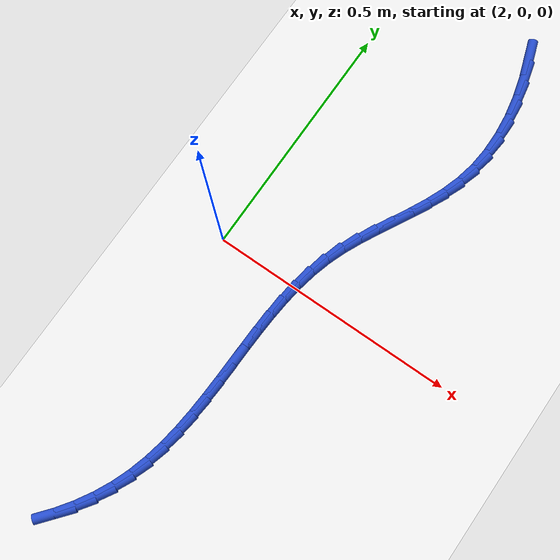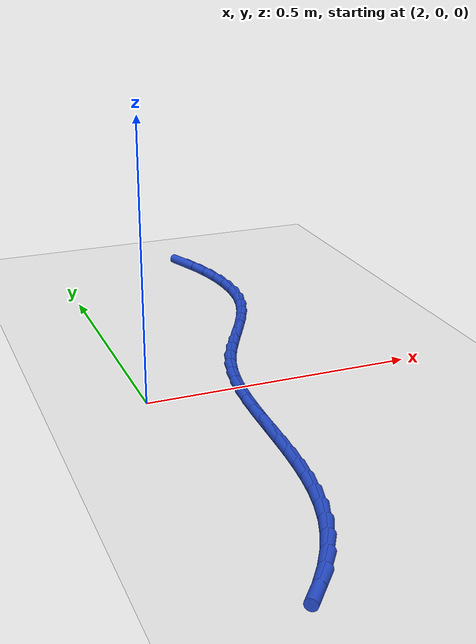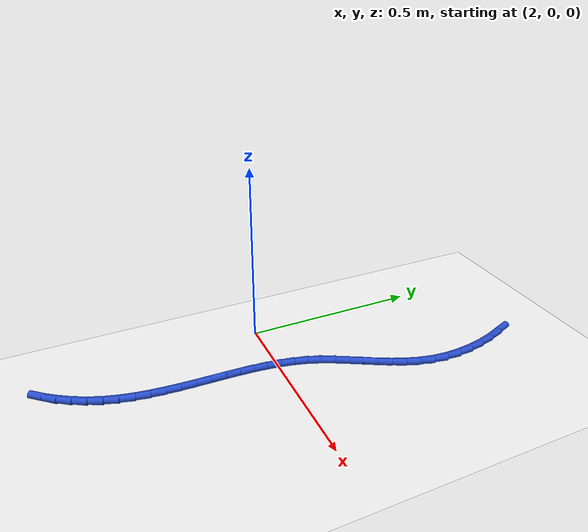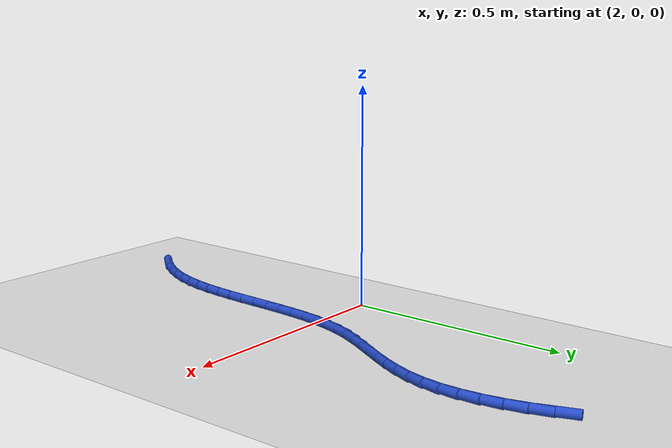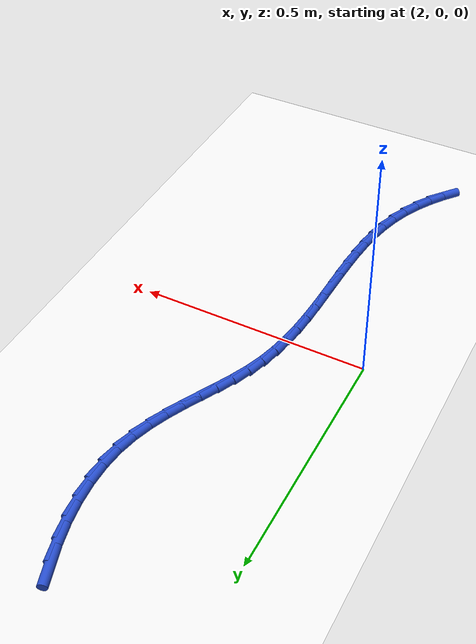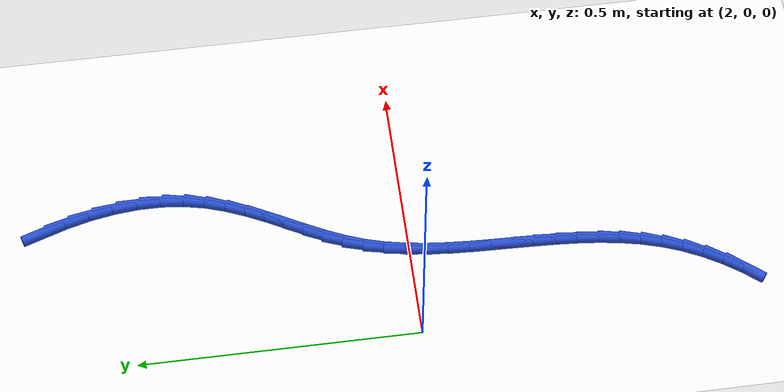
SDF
<sdf version="1.6">
 <world name="default">
  <model name="ground_plane">
   <static>1</static>
   <link name="link">
    <collision name="collision">
     <geometry><plane><normal>0 0 1</normal><size>100 100</size></plane></geometry>
     <surface><friction><ode><mu>100</mu><mu2>50</mu2></ode></friction></surface>
    </collision>
    <visual name="visual">
     <cast_shadows>0</cast_shadows>
     <geometry><plane><normal>0 0 1</normal><size>100 100</size></plane></geometry>
     <material>
      <script><uri>file://media/materials/scripts/gazebo.material</uri><name>Gazebo/WhiteGlow</name></script>
     </material>
    </visual>
   </link>
  </model>
  <model name="line">
   <link name="link_82">
    <pose>2.2860168000016787 0.6507621283373749 0.01 0 1.57 -1.235044058060258</pose>
    <collision name="collision">
     <geometry><cylinder><radius>0.01</radius><length>0.08</length></cylinder></geometry>
    </collision>
    <visual name="visual">
     <material>
      <script><name>Gazebo/Blue</name><uri>file://media/materials/scripts/gazebo.material</uri></script>
     </material>
     <geometry><cylinder><radius>0.01</radius><length>0.08</length></cylinder></geometry>
    </visual>
   </link>
   <link name="link_83">
    <pose>2.3009451116291357 0.6079832782249263 0.01 0 1.57 -1.3111368681482674</pose>
    <collision name="collision">
     <geometry><cylinder><radius>0.01</radius><length>0.08</length></cylinder></geometry>
    </collision>
    <visual name="visual">
     <material>
      <script><name>Gazebo/Blue</name><uri>file://media/materials/scripts/gazebo.material</uri></script>
     </material>
     <geometry><cylinder><radius>0.01</radius><length>0.08</length></cylinder></geometry>
    </visual>
   </link>
   <link name="link_84">
    <pose>2.312500368493042 0.5644863640517082 0.01 0 1.57 -1.390374351791379</pose>
    <collision name="collision">
     <geometry><cylinder><radius>0.01</radius><length>0.08</length></cylinder></geometry>
    </collision>
    <visual name="visual">
     <material>
      <script><name>Gazebo/Blue</name><uri>file://media/materials/scripts/gazebo.material</uri></script>
     </material>
     <geometry><cylinder><radius>0.01</radius><length>0.08</length></cylinder></geometry>
    </visual>
   </link>
   <link name="link_85">
    <pose>2.3204632308899393 0.5208316390334412 0.01 0 1.57 -1.4751146104142436</pose>
    <collision name="collision">
     <geometry><cylinder><radius>0.01</radius><length>0.08</length></cylinder></geometry>
    </collision>
    <visual name="visual">
     <material>
      <script><name>Gazebo/Blue</name><uri>file://media/materials/scripts/gazebo.material</uri></script>
     </material>
     <geometry><cylinder><radius>0.01</radius><length>0.08</length></cylinder></geometry>
    </visual>
   </link>
   <link name="link_86">
    <pose>2.3246143591163673 0.47757935638584725 0.01 0 1.57 -1.5679574712199298</pose>
    <collision name="collision">
     <geometry><cylinder><radius>0.01</radius><length>0.08</length></cylinder></geometry>
    </collision>
    <visual name="visual">
     <material>
      <script><name>Gazebo/Blue</name><uri>file://media/materials/scripts/gazebo.material</uri></script>
     </material>
     <geometry><cylinder><radius>0.01</radius><length>0.08</length></cylinder></geometry>
    </visual>
   </link>
   <link name="link_87">
    <pose>2.324734413468869 0.43528976932464813 0.01 0 1.57 1.469823745372509</pose>
    <collision name="collision">
     <geometry><cylinder><radius>0.01</radius><length>0.08</length></cylinder></geometry>
    </collision>
    <visual name="visual">
     <material>
      <script><name>Gazebo/Blue</name><uri>file://media/materials/scripts/gazebo.material</uri></script>
     </material>
     <geometry><cylinder><radius>0.01</radius><length>0.08</length></cylinder></geometry>
    </visual>
   </link>
   <link name="link_88">
    <pose>2.3206040542439856 0.3945231310655655 0.01 0 1.57 1.3558272055465153</pose>
    <collision name="collision">
     <geometry><cylinder><radius>0.01</radius><length>0.08</length></cylinder></geometry>
    </collision>
    <visual name="visual">
     <material>
      <script><name>Gazebo/Blue</name><uri>file://media/materials/scripts/gazebo.material</uri></script>
     </material>
     <geometry><cylinder><radius>0.01</radius><length>0.08</length></cylinder></geometry>
    </visual>
   </link>
   <link name="link_89">
    <pose>2.312133942376604 0.3557304185958448 0.01 0 1.57 1.2528487495024205</pose>
    <collision name="collision">
     <geometry><cylinder><radius>0.01</radius><length>0.08</length></cylinder></geometry>
    </collision>
    <visual name="visual">
     <material>
      <script><name>Gazebo/Blue</name><uri>file://media/materials/scripts/gazebo.material</uri></script>
     </material>
     <geometry><cylinder><radius>0.01</radius><length>0.08</length></cylinder></geometry>
    </visual>
   </link>
   <link name="link_90">
    <pose>2.2999632722567904 0.3187502166151791 0.01 0 1.57 1.1719579171795653</pose>
    <collision name="collision">
     <geometry><cylinder><radius>0.01</radius><length>0.08</length></cylinder></geometry>
    </collision>
    <visual name="visual">
     <material>
      <script><name>Gazebo/Blue</name><uri>file://media/materials/scripts/gazebo.material</uri></script>
     </material>
     <geometry><cylinder><radius>0.01</radius><length>0.08</length></cylinder></geometry>
    </visual>
   </link>
   <link name="link_91">
    <pose>2.2849848688027485 0.28320791250443395 0.01 0 1.57 1.1152220985894568</pose>
    <collision name="collision">
     <geometry><cylinder><radius>0.01</radius><length>0.08</length></cylinder></geometry>
    </collision>
    <visual name="visual">
     <material>
      <script><name>Gazebo/Blue</name><uri>file://media/materials/scripts/gazebo.material</uri></script>
     </material>
     <geometry><cylinder><radius>0.01</radius><length>0.08</length></cylinder></geometry>
    </visual>
   </link>
   <link name="link_92">
    <pose>2.2680918146240834 0.24872867703365872 0.01 0 1.57 1.0833131247067735</pose>
    <collision name="collision">
     <geometry><cylinder><radius>0.01</radius><length>0.08</length></cylinder></geometry>
    </collision>
    <visual name="visual">
     <material>
      <script><name>Gazebo/Blue</name><uri>file://media/materials/scripts/gazebo.material</uri></script>
     </material>
     <geometry><cylinder><radius>0.01</radius><length>0.08</length></cylinder></geometry>
    </visual>
   </link>
   <link name="link_93">
    <pose>2.2501771923303995 0.21493768097290272 0.01 0 1.57 1.0764679655349856</pose>
    <collision name="collision">
     <geometry><cylinder><radius>0.01</radius><length>0.08</length></cylinder></geometry>
    </collision>
    <visual name="visual">
     <material>
      <script><name>Gazebo/Blue</name><uri>file://media/materials/scripts/gazebo.material</uri></script>
     </material>
     <geometry><cylinder><radius>0.01</radius><length>0.08</length></cylinder></geometry>
    </visual>
   </link>
   <link name="link_94">
    <pose>2.232134084531302 0.1814600950922152 0.01 0 1.57 1.0950812802504155</pose>
    <collision name="collision">
     <geometry><cylinder><radius>0.01</radius><length>0.08</length></cylinder></geometry>
    </collision>
    <visual name="visual">
     <material>
      <script><name>Gazebo/Blue</name><uri>file://media/materials/scripts/gazebo.material</uri></script>
     </material>
     <geometry><cylinder><radius>0.01</radius><length>0.08</length></cylinder></geometry>
    </visual>
   </link>
   <link name="link_95">
    <pose>2.2148555738363944 0.14792109016164554 0.01 0 1.57 1.1398467342188465</pose>
    <collision name="collision">
     <geometry><cylinder><radius>0.01</radius><length>0.08</length></cylinder></geometry>
    </collision>
    <visual name="visual">
     <material>
      <script><name>Gazebo/Blue</name><uri>file://media/materials/scripts/gazebo.material</uri></script>
     </material>
     <geometry><cylinder><radius>0.01</radius><length>0.08</length></cylinder></geometry>
    </visual>
   </link>
   <link name="link_96">
    <pose>2.199234742855283 0.11394583695124347 0.01 0 1.57 1.2112254324449254</pose>
    <collision name="collision">
     <geometry><cylinder><radius>0.01</radius><length>0.08</length></cylinder></geometry>
    </collision>
    <visual name="visual">
     <material>
      <script><name>Gazebo/Blue</name><uri>file://media/materials/scripts/gazebo.material</uri></script>
     </material>
     <geometry><cylinder><radius>0.01</radius><length>0.08</length></cylinder></geometry>
    </visual>
   </link>
   <link name="link_97">
    <pose>2.186158942114622 0.07916172545443549 0.01 0 1.57 1.295638700866997</pose>
    <collision name="collision">
     <geometry><cylinder><radius>0.01</radius><length>0.08</length></cylinder></geometry>
    </collision>
    <visual name="visual">
     <material>
      <script><name>Gazebo/Blue</name><uri>file://media/materials/scripts/gazebo.material</uri></script>
     </material>
     <geometry><cylinder><radius>0.01</radius><length>0.08</length></cylinder></geometry>
    </visual>
   </link>
   <link name="link_98">
    <pose>2.17605546777816 0.04337425952066797 0.01 0 1.57 1.3692819104448664</pose>
    <collision name="collision">
     <geometry><cylinder><radius>0.01</radius><length>0.08</length></cylinder></geometry>
    </collision>
    <visual name="visual">
     <material>
      <script><name>Gazebo/Blue</name><uri>file://media/materials/scripts/gazebo.material</uri></script>
     </material>
     <geometry><cylinder><radius>0.01</radius><length>0.08</length></cylinder></geometry>
    </visual>
   </link>
   <link name="link_99">
    <pose>2.1685622725884635 0.006694543840955353 0.01 0 1.57 1.429544028840079</pose>
    <collision name="collision">
     <geometry><cylinder><radius>0.01</radius><length>0.08</length></cylinder></geometry>
    </collision>
    <visual name="visual">
     <material>
      <script><name>Gazebo/Blue</name><uri>file://media/materials/scripts/gazebo.material</uri></script>
     </material>
     <geometry><cylinder><radius>0.01</radius><length>0.08</length></cylinder></geometry>
    </visual>
   </link>
   <link name="link_100">
    <pose>2.1632396407820655 -0.030736246888455877 0.01 0 1.57 1.47665588994401</pose>
    <collision name="collision">
     <geometry><cylinder><radius>0.01</radius><length>0.08</length></cylinder></geometry>
    </collision>
    <visual name="visual">
     <material>
      <script><name>Gazebo/Blue</name><uri>file://media/materials/scripts/gazebo.material</uri></script>
     </material>
     <geometry><cylinder><radius>0.01</radius><length>0.08</length></cylinder></geometry>
    </visual>
   </link>
   <link name="link_101">
    <pose>2.159647856595505 -0.06877693797131931 0.01 0 1.57 1.5111246613642382</pose>
    <collision name="collision">
     <geometry><cylinder><radius>0.01</radius><length>0.08</length></cylinder></geometry>
    </collision>
    <visual name="visual">
     <material>
      <script><name>Gazebo/Blue</name><uri>file://media/materials/scripts/gazebo.material</uri></script>
     </material>
     <geometry><cylinder><radius>0.01</radius><length>0.08</length></cylinder></geometry>
    </visual>
   </link>
   <link name="link_102">
    <pose>2.1573472042653172 -0.10728635471138838 0.01 0 1.57 1.5334977371036245</pose>
    <collision name="collision">
     <geometry><cylinder><radius>0.01</radius><length>0.08</length></cylinder></geometry>
    </collision>
    <visual name="visual">
     <material>
      <script><name>Gazebo/Blue</name><uri>file://media/materials/scripts/gazebo.material</uri></script>
     </material>
     <geometry><cylinder><radius>0.01</radius><length>0.08</length></cylinder></geometry>
    </visual>
   </link>
   <link name="link_103">
    <pose>2.1558979680280403 -0.14612332241241666 0.01 0 1.57 1.544215018572916</pose>
    <collision name="collision">
     <geometry><cylinder><radius>0.01</radius><length>0.08</length></cylinder></geometry>
    </collision>
    <visual name="visual">
     <material>
      <script><name>Gazebo/Blue</name><uri>file://media/materials/scripts/gazebo.material</uri></script>
     </material>
     <geometry><cylinder><radius>0.01</radius><length>0.08</length></cylinder></geometry>
    </visual>
   </link>
   <link name="link_104">
    <pose>2.1548604321202096 -0.1851466663781577 0.01 0 1.57 1.5435291931899375</pose>
    <collision name="collision">
     <geometry><cylinder><radius>0.01</radius><length>0.08</length></cylinder></geometry>
    </collision>
    <visual name="visual">
     <material>
      <script><name>Gazebo/Blue</name><uri>file://media/materials/scripts/gazebo.material</uri></script>
     </material>
     <geometry><cylinder><radius>0.01</radius><length>0.08</length></cylinder></geometry>
    </visual>
   </link>
   <link name="link_105">
    <pose>2.1537948807783622 -0.224215211912365 0.01 0 1.57 1.5314740012142076</pose>
    <collision name="collision">
     <geometry><cylinder><radius>0.01</radius><length>0.08</length></cylinder></geometry>
    </collision>
    <visual name="visual">
     <material>
      <script><name>Gazebo/Blue</name><uri>file://media/materials/scripts/gazebo.material</uri></script>
     </material>
     <geometry><cylinder><radius>0.01</radius><length>0.08</length></cylinder></geometry>
    </visual>
   </link>
   <link name="link_106">
    <pose>2.152261598239036 -0.2631877843187921 0.01 0 1.57 1.5078692500501298</pose>
    <collision name="collision">
     <geometry><cylinder><radius>0.01</radius><length>0.08</length></cylinder></geometry>
    </collision>
    <visual name="visual">
     <material>
      <script><name>Gazebo/Blue</name><uri>file://media/materials/scripts/gazebo.material</uri></script>
     </material>
     <geometry><cylinder><radius>0.01</radius><length>0.08</length></cylinder></geometry>
    </visual>
   </link>
   <link name="link_107">
    <pose>2.1498208687387645 -0.30192320890119245 0.01 0 1.57 1.4723621355658947</pose>
    <collision name="collision">
     <geometry><cylinder><radius>0.01</radius><length>0.08</length></cylinder></geometry>
    </collision>
    <visual name="visual">
     <material>
      <script><name>Gazebo/Blue</name><uri>file://media/materials/scripts/gazebo.material</uri></script>
     </material>
     <geometry><cylinder><radius>0.01</radius><length>0.08</length></cylinder></geometry>
    </visual>
   </link>
   <link name="link_108">
    <pose>2.1460329765140878 -0.34028031096331973 0.01 0 1.57 1.424514597985107</pose>
    <collision name="collision">
     <geometry><cylinder><radius>0.01</radius><length>0.08</length></cylinder></geometry>
    </collision>
    <visual name="visual">
     <material>
      <script><name>Gazebo/Blue</name><uri>file://media/materials/scripts/gazebo.material</uri></script>
     </material>
     <geometry><cylinder><radius>0.01</radius><length>0.08</length></cylinder></geometry>
    </visual>
   </link>
   <link name="link_109">
    <pose>2.1404582058015404 -0.3781179158089273 0.01 0 1.57 1.3639533253926597</pose>
    <collision name="collision">
     <geometry><cylinder><radius>0.01</radius><length>0.08</length></cylinder></geometry>
    </collision>
    <visual name="visual">
     <material>
      <script><name>Gazebo/Blue</name><uri>file://media/materials/scripts/gazebo.material</uri></script>
     </material>
     <geometry><cylinder><radius>0.01</radius><length>0.08</length></cylinder></geometry>
    </visual>
   </link>
   <link name="link_110">
    <pose>2.1326568408376603 -0.4152948487417688 0.01 0 1.57 1.2905967194658798</pose>
    <collision name="collision">
     <geometry><cylinder><radius>0.01</radius><length>0.08</length></cylinder></geometry>
    </collision>
    <visual name="visual">
     <material>
      <script><name>Gazebo/Blue</name><uri>file://media/materials/scripts/gazebo.material</uri></script>
     </material>
     <geometry><cylinder><radius>0.01</radius><length>0.08</length></cylinder></geometry>
    </visual>
   </link>
   <link name="link_111">
    <pose>2.1221891658589827 -0.45166993506559766 0.01 0 1.57 1.2053232031828227</pose>
    <collision name="collision">
     <geometry><cylinder><radius>0.01</radius><length>0.08</length></cylinder></geometry>
    </collision>
    <visual name="visual">
     <material>
      <script><name>Gazebo/Blue</name><uri>file://media/materials/scripts/gazebo.material</uri></script>
     </material>
     <geometry><cylinder><radius>0.01</radius><length>0.08</length></cylinder></geometry>
    </visual>
   </link>
   <link name="link_112">
    <pose>2.1086307182700437 -0.4871016314843935 0.01 0 1.57 1.1171045726192763</pose>
    <collision name="collision">
     <geometry><cylinder><radius>0.01</radius><length>0.08</length></cylinder></geometry>
    </collision>
    <visual name="visual">
     <material>
      <script><name>Gazebo/Blue</name><uri>file://media/materials/scripts/gazebo.material</uri></script>
     </material>
     <geometry><cylinder><radius>0.01</radius><length>0.08</length></cylinder></geometry>
    </visual>
   </link>
   <link name="link_113">
    <pose>2.0918865555489603 -0.5214404316989975 0.01 0 1.57 1.0336388844885323</pose>
    <collision name="collision">
     <geometry><cylinder><radius>0.01</radius><length>0.08</length></cylinder></geometry>
    </collision>
    <visual name="visual">
     <material>
      <script><name>Gazebo/Blue</name><uri>file://media/materials/scripts/gazebo.material</uri></script>
     </material>
     <geometry><cylinder><radius>0.01</radius><length>0.08</length></cylinder></geometry>
    </visual>
   </link>
   <link name="link_114">
    <pose>2.072179837662686 -0.5545291423182647 0.01 0 1.57 0.954660094152125</pose>
    <collision name="collision">
     <geometry><cylinder><radius>0.01</radius><length>0.08</length></cylinder></geometry>
    </collision>
    <visual name="visual">
     <material>
      <script><name>Gazebo/Blue</name><uri>file://media/materials/scripts/gazebo.material</uri></script>
     </material>
     <geometry><cylinder><radius>0.01</radius><length>0.08</length></cylinder></geometry>
    </visual>
   </link>
   <link name="link_115">
    <pose>2.0497466933390203 -0.5862102565550186 0.01 0 1.57 0.879462419815245</pose>
    <collision name="collision">
     <geometry><cylinder><radius>0.01</radius><length>0.08</length></cylinder></geometry>
    </collision>
    <visual name="visual">
     <material>
      <script><name>Gazebo/Blue</name><uri>file://media/materials/scripts/gazebo.material</uri></script>
     </material>
     <geometry><cylinder><radius>0.01</radius><length>0.08</length></cylinder></geometry>
    </visual>
   </link>
  </model>
 </world>
</sdf>
